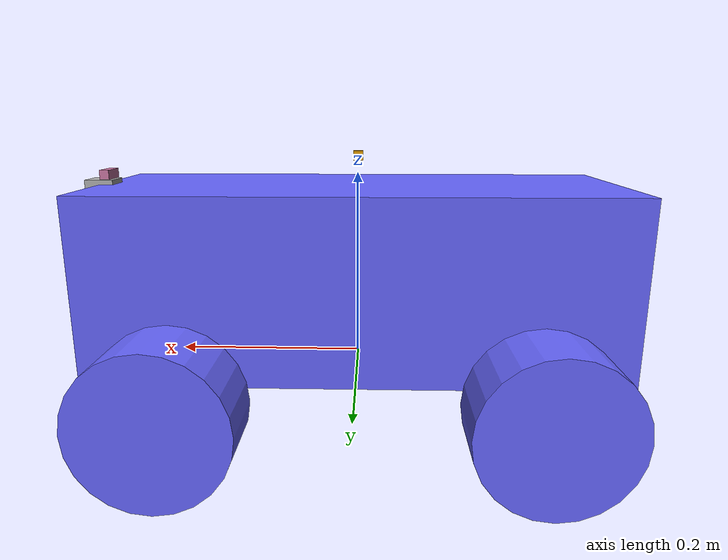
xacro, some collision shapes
<?xml version="1.0" encoding="UTF-8" ?>

<robot
  name="custom_bot"
  xmlns:xacro="http://www.ros.org/wiki/xacro">

  <xacro:include filename="$(find udacity_bot)/urdf/custom_slam_bot.gazebo" />
  <xacro:include filename="$(find udacity_bot)/urdf/wheels.xacro" />

  <!-- Parameterized robot dimensions -->
  <xacro:property name="wheel_radius" value="0.078" />
  <xacro:property name="wheel_width" value="0.083" />
  <xacro:property name="wheel_base" value="0.363" />
  <xacro:property name="spur_width" value="0.168" />

  <xacro:property name="chassis_width" value="0.243" />
  <xacro:property name="chassis_length" value="0.551" />
  <xacro:property name="chassis_height" value="0.188" />
  <xacro:property name="chassis_clearance" value="0.090" />
  <xacro:property name="chassis_mass" value="10" />

  <link name="robot_footprint"/>

  <joint name="robot_footprint_joint" type="fixed">
    <parent link="robot_footprint"/>
    <child link="chassis" />
    <origin xyz="0 0 ${chassis_height/2}"/>
  </joint>

  <link name="chassis">
    <visual>
      <origin xyz="0 0 0" rpy="0 0 0" />
      <geometry>
        <box size="${chassis_length} ${chassis_width} ${chassis_height}"/>
      </geometry>
      <material name="LightBlue">
        <color rgba="0.4 0.4 1.0 1.0" />
      </material>
    </visual>
    <collision>
      <geometry>
        <box size="${chassis_length} ${chassis_width} ${chassis_height}"/>
      </geometry>
    </collision>
    <inertial>
      <mass value="${chassis_mass}" />
      <inertia ixx="0.1" ixy="0.0" ixz="0.0" iyy="0.1" iyz="0.0" izz="0.1" />
    </inertial>
  </link>
  <gazebo reference="chassis" >
    <material>Gazebo/Orange</material>
  </gazebo>

  <xacro:wheel prefix="left"  suffix="front" reflect="1" mirror="1"/>
  <xacro:wheel prefix="right" suffix="front" reflect="-1" mirror="1"/>
  <xacro:wheel prefix="left"  suffix="rear"  reflect="1" mirror="-1"/>
  <xacro:wheel prefix="right" suffix="rear"  reflect="-1" mirror="-1"/>

  <link name="camera">
    <collision>
      <origin xyz="-0.005 0 0" rpy="0 0 0"/>
      <geometry>
        <box size="0.01 0.03 0.03"/>
      </geometry>
    </collision>

    <visual>
      <origin xyz="-0.005 0 0" rpy="0 0 0"/>
      <geometry>
        <box size="0.01 0.03 0.03"/>
      </geometry>
    </visual>

    <inertial>
      <mass value=".1" />
      <origin xyz="0 0 0" rpy="0 0 0"/>
      <inertia ixx="1e-6" ixy="0" ixz="0" iyy="1e-6" iyz="0" izz="1e-6" />
    </inertial>
  </link>

  <link name="camera_rgbd_frame">
    <collision>
      <origin xyz="-0.005 0 0" rpy="0 0 -1.5707"/>
      <geometry>
        <box size="0.01 0.03 0.03"/>
      </geometry>
    </collision>

    <visual>
      <origin xyz="-0.005 0 0" rpy="0 0 -1.5707"/>
      <geometry>
        <box size="0.01 0.03 0.03"/>
      </geometry>
    </visual>

    <inertial>
      <mass value=".1" />
      <origin xyz="0 0 0" rpy="0 0 0"/>
      <inertia ixx="1e-6" ixy="0" ixz="0" iyy="1e-6" iyz="0" izz="1e-6" />
    </inertial>
  </link>

  <link name="hokuyo">
    <collision>
      <origin xyz="0 0 0" rpy="0 0 0"/>
      <geometry>
        <box size=".01 .01 .01"/>
      </geometry>
    </collision>

    <visual>
      <origin xyz="0 0 0" rpy="0 0 0"/>
      <geometry>
        <mesh filename="package://udacity_bot/meshes/hokuyo.dae"/>
      </geometry>
    </visual>

    <inertial>
      <mass value=".1" />
      <origin xyz="0 0 0" rpy="0 0 0"/>
      <inertia ixx="1e-6" ixy="0" ixz="0" iyy="1e-6" iyz="0" izz="1e-6" />
    </inertial>
  </link>

  <joint name="base_to_camera" type="fixed">
    <parent link="chassis" />
    <child link="camera" />
    <origin xyz="${chassis_length/2} 0 ${chassis_height/2}" />
  </joint>

  <joint name="camera_joint" type="fixed">
    <origin xyz="0 0 0" rpy="-1.5707 0 -1.5707"/>
    <parent link="camera"/>
    <child link="camera_rgbd_frame"/>
  </joint>

  <joint name="hokuyo_joint" type="fixed">
    <parent link="chassis"/>
    <child link="hokuyo"/>
    <origin rpy="0 0 0" xyz="0 0 ${chassis_height/2+0.03}"/>
    <axis xyz="0 1 0" />
  </joint>

</robot>

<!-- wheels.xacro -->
<robot
  xmlns:xacro="http://www.ros.org/wiki/xacro"
  >
  <!--
    Wheel definition.
    Parameters:
    prefix suffix reflect mirror
    Properties:
    wheel_width
    wheel_radius
    wheel_base
    spur_width
    chassis_clearance
   -->
  <xacro:macro name="wheel" params="prefix suffix reflect mirror">
    <link name="${prefix}_${suffix}_wheel_link">
      <visual>
        <origin xyz="0 0 0" rpy="0 ${pi/2} 0" />
        <geometry>
          <cylinder length="${wheel_width}" radius="${wheel_radius}" />
          <!-- mesh filename="package://robo_magellan/urdf/some.stl"/ -->
        </geometry>
        <material name="LightBlue"/>
      </visual>
      <collision>
        <origin xyz="0 0 0" rpy="0 ${pi/2} 0" />
        <geometry>
          <cylinder length="${wheel_width}" radius="${wheel_radius}" />
        </geometry>
      </collision>
      <inertial>
        <mass value="2.637" />
        <origin xyz="0 0 0" rpy=" 0 1.5707 1.5707"/>
        <inertia  ixx="0.02467" ixy="0" ixz="0" iyy="0.04411" iyz="0" izz="0.02467" />
      </inertial>
    </link>
    <gazebo reference="${prefix}_${suffix}_wheel_link">
      <mu1 value="1.0"/>
      <mu2 value="1.0"/>
      <kp value="10000000.0" />
      <kd value="1.0" />
      <fdir1 value="0 1 0"/>
    </gazebo>
    <transmission name="${prefix}_${suffix}_transmission">
        <type>transmission_interface/SimpleTransmission</type>
        <joint name="base_to_${prefix}_${suffix}_wheel">
            <hardwareInterface>VelocityJointInterface</hardwareInterface>
        </joint>
        <actuator name="${prefix}_${suffix}_motor">
            <mechanicalReduction>1</mechanicalReduction>
        </actuator>
    </transmission>
    <joint name="base_to_${prefix}_${suffix}_wheel" type="continuous">
      <parent link="robot_footprint" />
      <child link="${prefix}_${suffix}_wheel_link" />
      <origin xyz="${wheel_base/2*mirror}  ${spur_width*reflect} ${wheel_radius-chassis_clearance}" rpy="0 0 ${(pi/2)}" />
      <limit effort="10000" velocity="1000"/>
      <joint_properties damping="1.0" friction="1.0"/>
    </joint>
  </xacro:macro>

</robot>
